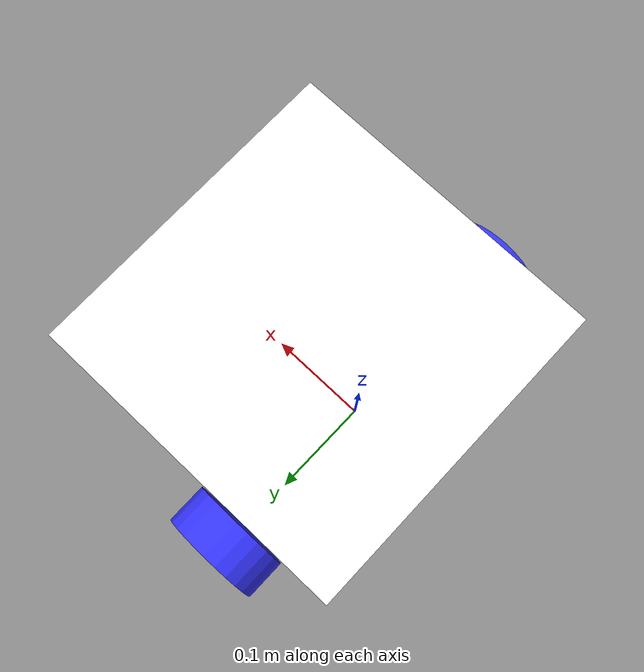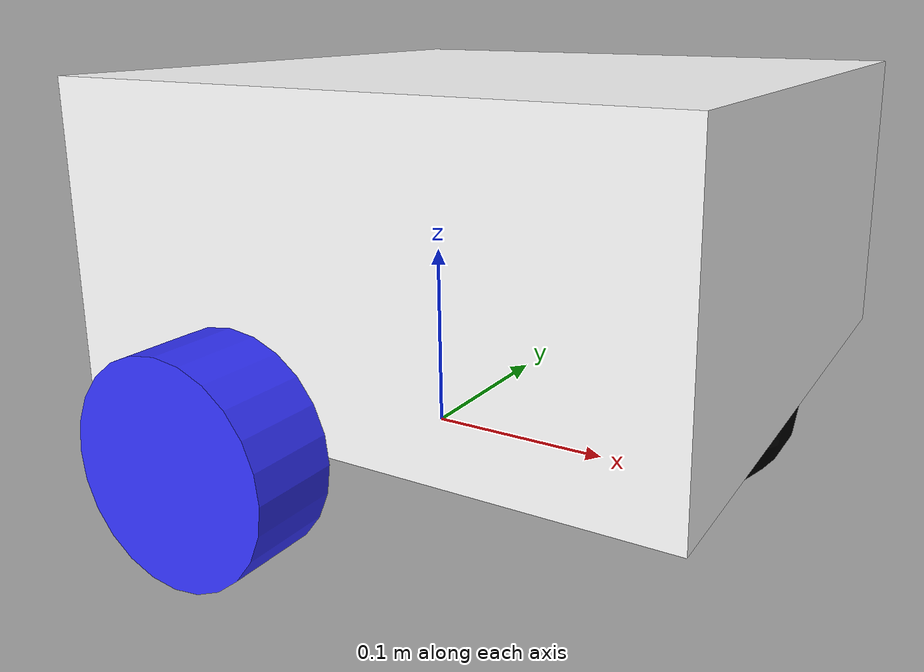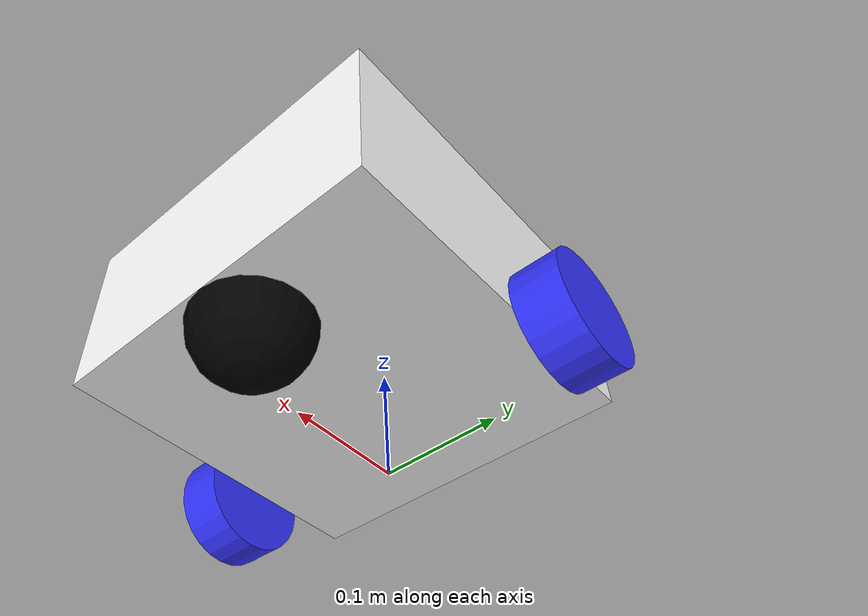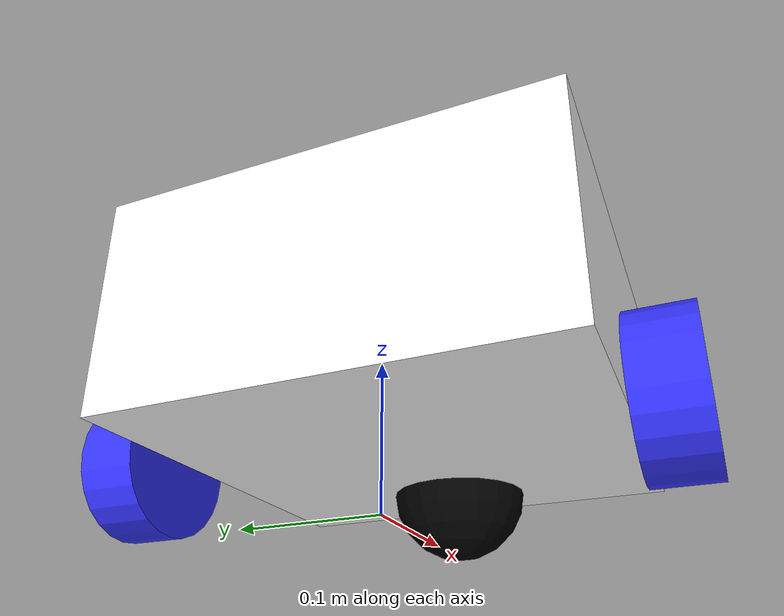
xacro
<?xml version="1.0"?>
<robot xmlns:xacro="http://www.ros.org/wiki/xacro">

    <xacro:include filename="inertial_macros.xacro" />

    <material name="white">
        <color rgba="1 1 1 1" />
    </material>

    <material name="black">
        <color rgba="0 0 0 1" />
    </material>

    <material name="blue">
        <color rgba="0.2 0.2 1 1" />
    </material>

    <material name="orange">
        <color rgba="1 0.3 0.1 1" />
    </material>

    <!-- Robot footprint projected onto the ground plane -->

    <link name="base_footprint"/>

    <joint name="base_footprint_joint" type="fixed">
        <parent link="base_footprint"/>
        <child link="base_link"/>
        <origin xyz="0 0 0.05" rpy="0 0 0"/>
    </joint>

    <!--base link at wheel-center height -->

    <link name="base_link"/>

    <!-- chassis link -->

    <joint name="chassis_joint" type="fixed">
        <parent link="base_link"/>
        <child link="chassis"/>
        <origin xyz="-0.1 0 0" />
    </joint>

    <link name="chassis">
        <visual>
            <origin xyz="0.15 0 0.075" />
            <geometry>
                <box size="0.3 0.3 0.15"/>
            </geometry>
            <material name="white"/>
        </visual>
        <collision>
            <origin xyz="0.15 0 0.075" />
            <geometry>
                <box size="0.3 0.3 0.15"/>
            </geometry>
        </collision>
        <xacro:inertial_box mass="0.5" x="0.3" y="0.3" z="0.15">
            <origin xyz="0.15 0 0.075" rpy="0 0 0" />
        </xacro:inertial_box>
    </link>

    <gazebo reference="chassis">
        <material>Gazebo/white</material>
    </gazebo>

    <!-- left wheel link -->

    <joint name="left_wheel_joint" type="continuous">
        <parent link="base_link"/>
        <child link="left_wheel"/>
        <origin xyz="0 0.175 0" rpy="-${pi/2} 0 0"/>
        <axis xyz="0 0 1"/>
    </joint>

    <link name="left_wheel">
        <visual>
            <origin xyz="0 0 0" />
            <geometry>
                <cylinder radius="0.05" length="0.04"/>
            </geometry>
            <material name="blue"/>
        </visual>
        <collision>
            <origin xyz="0 0 0" />
            <geometry>
                <cylinder radius="0.05" length="0.04"/>
            </geometry>
        </collision>
        <xacro:inertial_cylinder mass="0.1" length="0.04" radius="0.05">
            <origin xyz="0 0 0" rpy="0 0 0" />
        </xacro:inertial_cylinder>
    </link>

    <gazebo reference="left_wheel">
        <material>Gazebo/blue</material>
        <mu1 value="1.0"/>
        <mu2 value="1.0"/>
    </gazebo>

    <!-- right wheel link -->

    <joint name="right_wheel_joint" type="continuous">
        <parent link="base_link"/>
        <child link="right_wheel"/>
        <origin xyz="0 -0.175 0" rpy="${pi/2} 0 0"/>
        <axis xyz="0 0 -1"/>
    </joint>

    <link name="right_wheel">
        <visual>
            <origin xyz="0 0 0" />
            <geometry>
                <cylinder radius="0.05" length="0.04"/>
            </geometry>
            <material name="blue"/>
        </visual>
        <collision>
            <origin xyz="0 0 0" />
            <geometry>
                <cylinder radius="0.05" length="0.04"/>
            </geometry>
        </collision>
        <xacro:inertial_cylinder mass="0.1" length="0.04" radius="0.05">
            <origin xyz="0 0 0" rpy="0 0 0" />
        </xacro:inertial_cylinder>
    </link>

    <gazebo reference="right_wheel">
        <material>Gazebo/blue</material>
        <mu1 value="1.0"/>
        <mu2 value="1.0"/>
    </gazebo>

    <!-- front caster link -->

    <joint name="front_caster_joint" type="fixed">
        <parent link="base_link"/>
        <child link="front_caster"/>
        <origin xyz="0.15 0 0" />
    </joint>

    <link name="front_caster">
        <visual>
            <geometry>
                <sphere radius="0.05"/>
            </geometry>
            <material name="black"/>
        </visual>
        <collision>
            <geometry>
                <sphere radius="0.05"/>
            </geometry>
        </collision>
        <xacro:inertial_sphere mass="0.1" radius="0.05">
            <origin xyz="0 0 0" rpy="0 0 0" />
        </xacro:inertial_sphere>
    </link>

    <gazebo reference="front_caster">
        <material>Gazebo/black</material>
        <mu1 value="0.001"/>
        <mu2 value="0.001"/>
    </gazebo>

</robot>
